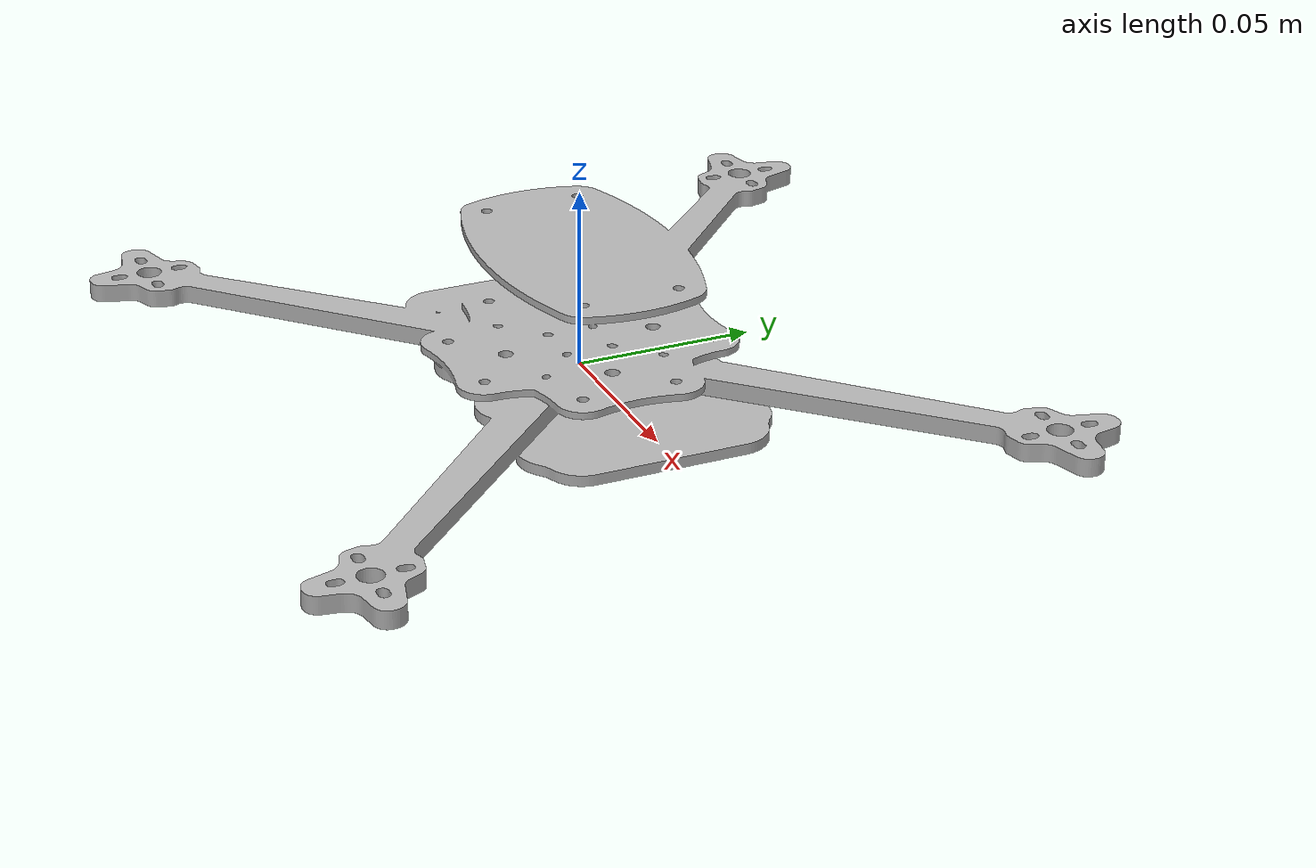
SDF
<sdf version='1.7'>
  <model name='my_robot'>
    <link name='base_link'>
      <inertial>
        <pose>0 0 0 0 -0 0</pose>
        <mass>1</mass>
        <inertia>
          <ixx>0.01</ixx>
          <ixy>0</ixy>
          <ixz>0</ixz>
          <iyy>0.01</iyy>
          <iyz>0</iyz>
          <izz>0.01</izz>
        </inertia>
      </inertial>
      <collision name='base_link_collision'>
        <pose>0 0 0 0 -0 0</pose>
        <geometry>
          <mesh>
            <scale>0.001 0.001 0.001</scale>
            <uri>file://$(find drone_sim)/meshes/drone.stl</uri>
          </mesh>
        </geometry>
      </collision>
      <visual name='base_link_visual'>
        <pose>0 0 0 0 -0 0</pose>
        <geometry>
          <mesh>
            <scale>0.001 0.001 0.001</scale>
            <uri>model://drone_sim/meshes/drone.stl</uri>
          </mesh>
        </geometry>
      </visual>
    </link>

    <plugin name="drone_thrust_plugin" filename="libdrone_thrust_plugin.so"/>

  </model>
</sdf>
